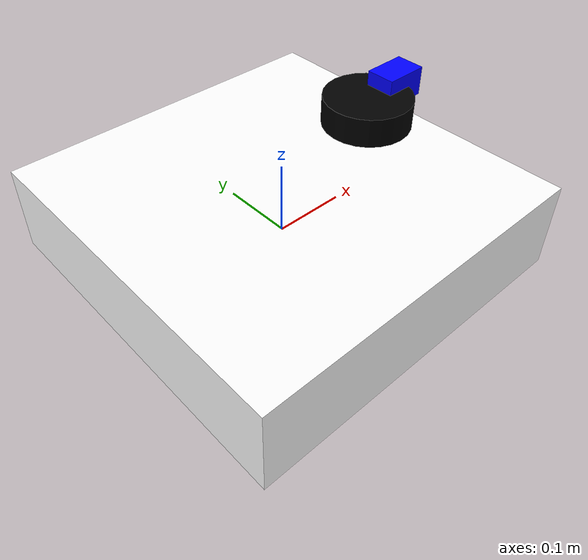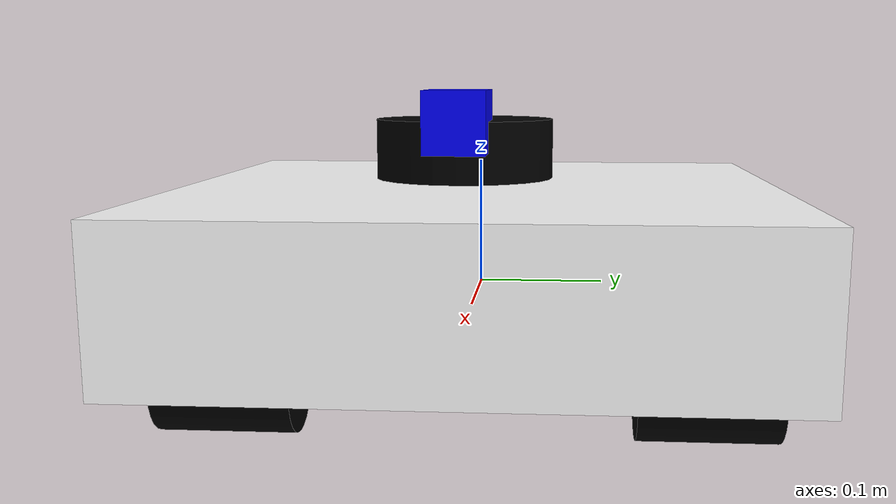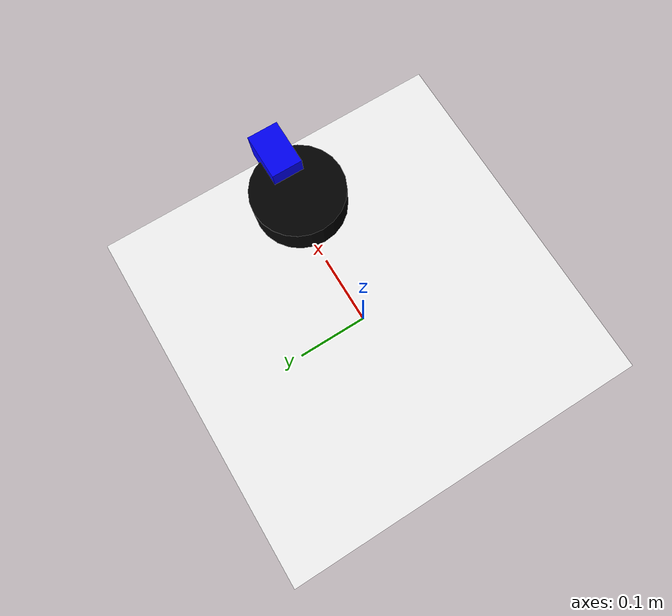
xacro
<?xml version="1.0"?>
<robot name="macroed" xmlns:xacro="http://www.ros.org/wiki/xacro">

  <xacro:include filename="$(find my_robot_description)/urdf/sensors/lidar.xacro"/>
  <xacro:include filename="$(find my_robot_description)/urdf/sensors/camera.xacro"/>

  <xacro:property name="length" value="0.4" />
  <xacro:property name="width" value="0.25" />
  <xacro:property name="height" value="0.1" />
  <xacro:property name="wheellen" value="0.1" />
  <xacro:property name="wheeldia" value="0.07" />

  <ros2_control name="GazeboSystem" type="system">
    <hardware>
      <plugin>gazebo_ros2_control/GazeboSystem</plugin>
    </hardware>
    <joint name="left_front_wheel_joint">
      <command_interface name="velocity"/>
      <state_interface name="position"/>
      <state_interface name="velocity"/>
    </joint>
    <joint name="left_back_wheel_joint">
      <command_interface name="velocity"/>
      <state_interface name="position"/>
      <state_interface name="velocity"/>
    </joint>
    <joint name="right_front_wheel_joint">
      <command_interface name="velocity"/>
      <state_interface name="position"/>
      <state_interface name="velocity"/>
    </joint>
    <joint name="right_back_wheel_joint">
      <command_interface name="velocity"/>
      <state_interface name="position"/>
      <state_interface name="velocity"/>
    </joint>
  </ros2_control>

  <!-- INERTIAL MACROS -->
  <xacro:macro name="default_inertial" params="mass">
    <inertial>
      <mass value="${mass}"/>
      <inertia
        ixx="0.01" ixy="0.0" ixz="0.0"
        iyy="0.01" iyz="0.0"
        izz="0.01"/>
    </inertial>
  </xacro:macro>

  <xacro:macro name="base_inertial" params="mass">
    <inertial>
      <origin xyz="0 0 -0.03" rpy="0 0 0"/>
      <mass value="${mass}"/>
      <inertia
        ixx="0.03" ixy="0.0" ixz="0.0"
        iyy="0.03" iyz="0.0"
        izz="0.05"/>
    </inertial>
  </xacro:macro>

  <!-- correct cylinder inertia for wheels -->
  <xacro:macro name="wheel_inertial" params="mass">
    <inertial>
      <mass value="${mass}"/>
      <inertia
        ixx="0.001" ixy="0.0" ixz="0.0"
        iyy="0.001" iyz="0.0"
        izz="0.0005"/>
    </inertial>
  </xacro:macro>

  <material name="blue">
    <color rgba="0 0 0.8 1"/>
  </material>
  <material name="black">
    <color rgba="0 0 0 1"/>
  </material>
  <material name="white">
    <color rgba="1 1 1 1"/>
  </material>

  <!-- BASE LINK -->
  <link name="base_link">
    <visual>
      <geometry>
        <box size="${length} ${width} ${height}"/>
      </geometry>
      <material name="blue"/>
    </visual>

    <visual>
      <origin xyz="0 0 0.02" rpy="0 0 0"/>
      <geometry>
        <box size="0.48 0.48 0.12"/>
      </geometry>
      <material name="white"/>
    </visual>

    <!-- collision matches smaller visual, stays within wheelbase -->
    <collision>
      <geometry>
        <box size="${length} ${width} ${height}"/>
      </geometry>
    </collision>

    <!-- reduced mass for more realistic physics -->
    <xacro:default_inertial mass="3.0"/>
  </link>
<gazebo reference="base_link">
    <mu1>0.5</mu1>
    <mu2>0.5</mu2>
    <kp>100000.0</kp>
    <kd>10.0</kd>
</gazebo>

  <!-- WHEEL MACRO -->
  <xacro:macro name="wheel" params="name x y">
    <link name="${name}">
      <visual>
        <origin xyz="0 0 0" rpy="${pi/2} 0 0"/>
        <geometry>
          <cylinder radius="${wheeldia/2}" length="${wheellen}"/>
        </geometry>
        <material name="black"/>
      </visual>
      <collision>
        <origin xyz="0 0 0" rpy="${pi/2} 0 0"/>
        <geometry>
          <cylinder radius="${wheeldia/2}" length="${wheellen}"/>
        </geometry>
      </collision>

      <!-- correct cylinder inertia -->
      <xacro:wheel_inertial mass="0.5"/>
    </link>

    <joint name="${name}_joint" type="continuous">
      <axis xyz="0 1 0"/>
      <parent link="base_link"/>
      <child link="${name}"/>
      <origin xyz="${x} ${y} -0.05" rpy="0 0 0"/>
    </joint>

    <!-- balanced friction and contact params -->
    <gazebo reference="${name}">
      <mu1>2.0</mu1>
      <mu2>2.0</mu2>
      <kp>100000.0</kp>
      <kd>10.0</kd>
    </gazebo>
  </xacro:macro>

  <!-- SENSORS -->
  <xacro:lidar_sensor
    parent_link="base_link"
    xyz="0.15 0 0.12"
    rpy="0 0 0"/>

  <xacro:camera_sensor
    parent_link="base_link"
    xyz="0.20 0 0.14"
    rpy="0 0 0"/>

  <!-- WHEELS -->
  <xacro:wheel name="right_front_wheel" x="0.15"  y="-0.17"/>
  <xacro:wheel name="right_back_wheel"  x="-0.15" y="-0.17"/>
  <xacro:wheel name="left_front_wheel"  x="0.15"  y="0.17"/>
  <xacro:wheel name="left_back_wheel"   x="-0.15" y="0.17"/>

  <!-- GAZEBO ROS2 CONTROL PLUGIN -->
  <gazebo>
    <plugin name="gazebo_ros2_control" filename="libgazebo_ros2_control.so">
      <parameters>/home/miko/mobile_robot_ws/install/my_robot_description/share/my_robot_description/config/controllers.yaml</parameters>
    </plugin>
  </gazebo>

</robot>

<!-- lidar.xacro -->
<robot xmlns:xacro="http://www.ros.org/wiki/xacro">

  <xacro:macro name="lidar_sensor" params="parent_link xyz rpy">

    <!-- LiDAR link -->
    <link name="lidar_link">
      <visual>
        <origin xyz="0 0 0" rpy="0 0 0"/>
        <geometry>
          <cylinder radius="0.06" length="0.04"/>
        </geometry>
        <material name="black">
          <color rgba="0 0 0 1"/>
        </material>
      </visual>

      <collision>
        <origin xyz="0 0 0" rpy="0 0 0"/>
        <geometry>
          <cylinder radius="0.06" length="0.04"/>
        </geometry>
      </collision>

      <inertial>
        <origin xyz="0 0 0" rpy="0 0 0"/>
        <mass value="0.1"/>
        <inertia
          ixx="0.0001" ixy="0.0" ixz="0.0"
          iyy="0.0001" iyz="0.0"
          izz="0.0001"/>
      </inertial>
    </link>

    <!-- Fixed joint from robot body to LiDAR -->
    <joint name="lidar_joint" type="fixed">
      <parent link="${parent_link}"/>
      <child link="lidar_link"/>
      <origin xyz="${xyz}" rpy="${rpy}"/>
    </joint>

    <!-- Gazebo LiDAR sensor -->
    <gazebo reference="lidar_link">
      <sensor name="lidar_sensor" type="ray">
        <pose>0 0 0 0 0 0</pose>
        <visualize>true</visualize>
        <update_rate>10</update_rate>

        <ray>
          <scan>
            <horizontal>
              <samples>360</samples>
              <resolution>1</resolution>
              <min_angle>-3.14159</min_angle>
              <max_angle>3.14159</max_angle>
            </horizontal>
          </scan>

          <range>
            <min>0.12</min>
            <max>8.0</max>
            <resolution>0.01</resolution>
          </range>

          <noise>
            <type>gaussian</type>
            <mean>0.0</mean>
            <stddev>0.01</stddev>
          </noise>
        </ray>

        <plugin name="gazebo_ros_lidar_controller" filename="libgazebo_ros_ray_sensor.so">
          <ros>
            <remapping>~/out:=/scan</remapping>
          </ros>
          <output_type>sensor_msgs/LaserScan</output_type>
          <frame_name>lidar_link</frame_name>
        </plugin>
      </sensor>
    </gazebo>

  </xacro:macro>

</robot>

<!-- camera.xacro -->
<robot xmlns:xacro="http://www.ros.org/wiki/xacro">

  <xacro:macro name="camera_sensor" params="parent_link xyz rpy">

    <!-- Camera body link -->
    <link name="camera_link">
      <visual>
        <origin xyz="0 0 0" rpy="0 0 0"/>
        <geometry>
          <box size="0.06 0.04 0.04"/>
        </geometry>
        <material name="blue">
          <color rgba="0 0 1 1"/>
        </material>
      </visual>

      <collision>
        <origin xyz="0 0 0" rpy="0 0 0"/>
        <geometry>
          <box size="0.06 0.04 0.04"/>
        </geometry>
      </collision>

      <inertial>
        <origin xyz="0 0 0" rpy="0 0 0"/>
        <mass value="0.05"/>
        <inertia
          ixx="0.00005" ixy="0.0" ixz="0.0"
          iyy="0.00005" iyz="0.0"
          izz="0.00005"/>
      </inertial>
    </link>

    <!-- Fixed joint from robot body to camera -->
    <joint name="camera_joint" type="fixed">
      <parent link="${parent_link}"/>
      <child link="camera_link"/>
      <origin xyz="${xyz}" rpy="${rpy}"/>
    </joint>

    <!-- Optical frame for camera convention -->
    <link name="camera_link_optical"/>

    <joint name="camera_optical_joint" type="fixed">
      <parent link="camera_link"/>
      <child link="camera_link_optical"/>
      <origin xyz="0 0 0" rpy="${-pi/2} 0 ${-pi/2}"/>
    </joint>

    <!-- Gazebo camera sensor -->
    <gazebo reference="camera_link">
      <sensor name="camera_sensor" type="camera">
      <always_on>true</always_on>
        <update_rate>30</update_rate>
        <visualize>true</visualize>
        <pose>0 0 0 0 0 0</pose>
        <visualize>true</visualize>
        <update_rate>30</update_rate>

        <camera>
          <horizontal_fov>1.3962634</horizontal_fov>

          <image>
            <width>640</width>
            <height>480</height>
            <format>R8G8B8</format>
          </image>

          <clip>
            <near>0.05</near>
            <far>20.0</far>
          </clip>
        </camera>
        <topic>camera/image_raw</topic>
          <gz_frame_id>camera_link_optical</gz_frame_id>
        <plugin name="gazebo_ros_camera_controller" filename="libgazebo_ros_camera.so">
          <ros>
            <namespace>/camera</namespace>
          </ros>
          <camera_name>camera</camera_name>
          <frame_name>camera_link_optical</frame_name>
          <hack_baseline>0.07</hack_baseline>
        </plugin>
      </sensor>
    </gazebo>

  </xacro:macro>

</robot>
